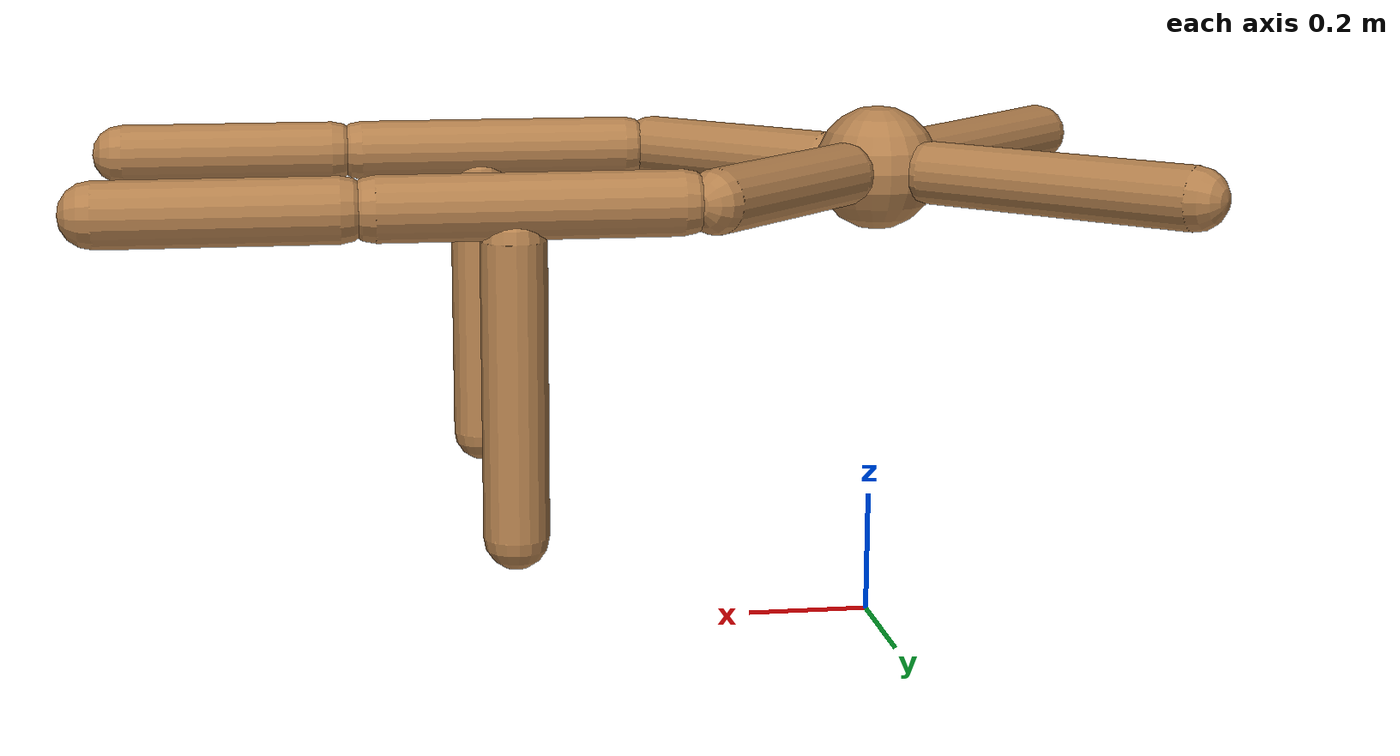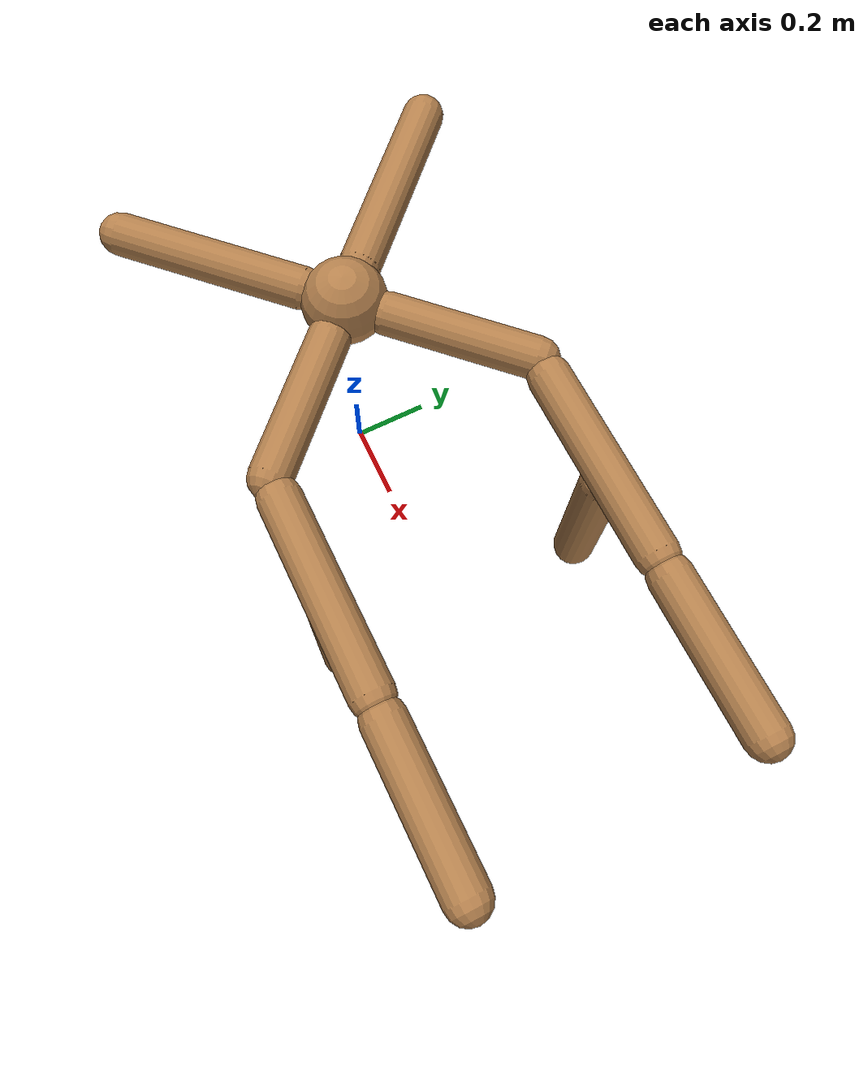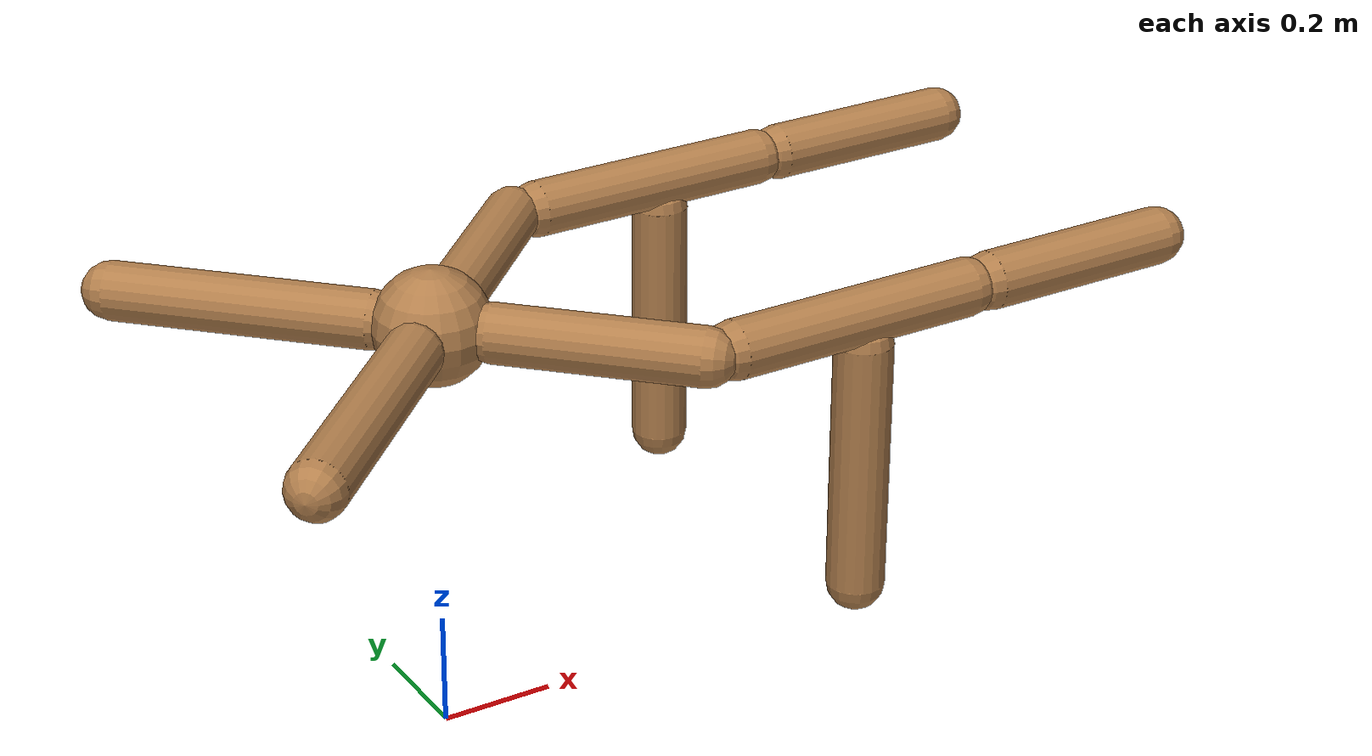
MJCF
<?xml version='1.0' encoding='UTF-8'?>
<!-- Universal Animal Template: unimal -->
<mujoco model="unimal">
  <compiler angle="degree"/>
  <size njmax="2000" nconmax="500"/>
  <option timestep=".005">
    <flag filterparent="disable"/>
  </option>
  <!-- Common defaults to make search space tractable -->
  <default>
    <!-- Define motor defaults -->
    <motor ctrlrange="-1 1" ctrllimited="true"/>
    <!-- Define joint defaults -->
    <default class="normal_joint">
      <joint type="hinge" damping="1" stiffness="1" armature="1" limited="true" range="-120 120" solimplimit="0 0.99 0.01"/>
    </default>
    <default class="walker_joint">
      <joint type="hinge" damping="0.2" stiffness="1" armature=".01" limited="true" range="-120 120" solimplimit="0 0.99 0.01"/>
    </default>
    <default class="stiff_joint">
      <joint type="hinge" damping="5" stiffness="10" armature=".01" limited="true" solimplimit="0 0.99 0.01"/>
    </default>
    <default class="free">
      <joint limited="false" damping="0" armature="0" stiffness="0"/>
    </default>
    <default class="growth_site">
      <site size="1e-6 1e-6 1e-6"/>
    </default>
    <default class="torso_growth_site">
      <site size="1e-6 1e-6 1e-6"/>
    </default>
    <default class="mirror_growth_site">
      <site size="1e-6 1e-6 1e-6"/>
    </default>
    <default class="btm_pos_site">
      <site size="1e-6 1e-6 1e-6"/>
    </default>
    <default class="box_face_site">
      <site size="1e-6 1e-6 1e-6"/>
    </default>
    <default class="imu_vel">
      <site type="box" size="0.05" rgba="1 0 0 1"/>
    </default>
    <default class="touch_site">
      <site group="3" rgba="0 0 1 .3"/>
    </default>
    <default class="food_site">
      <site material="food" size="0.15"/>
    </default>
    <!-- Define geom defaults -->
    <geom type="capsule" condim="3" friction="0.7 0.1 0.1" material="self"/>
  </default>
  <worldbody>
    <light diffuse="1 1 1" directional="true" exponent="1" pos="0 0 1" specular=".1 .1 .1"/>
    <!-- Programatically generated xml goes here -->
    <body name="torso/0" pos="0 0 0.75">
      <joint name="root" type="free" class="free"/>
      <site name="root" class="imu_vel"/>
      <geom name="torso/0" type="sphere" size="0.1" condim="3" density="800"/>
      <camera name="side" pos="0 -7 2" xyaxes="1 0 0 0 1 2" mode="trackcom"/>
      <site name="torso/0" class="growth_site" pos="0 0 0"/>
      <site name="torso/btm_pos/0" class="btm_pos_site" pos="0 0 -0.1"/>
      <site name="torso/touch/0" class="touch_site" size="0.11"/>
      <site name="torso/vertical/0" class="torso_growth_site" pos="0 0 -0.1"/>
      <body name="limb/0" pos="-0.07 0.07 0.0">
        <joint name="limbx/0" type="hinge" class="normal_joint" range="0 30" pos="0.04 -0.04 0.0" axis="0.5 0.5 -0.7071"/>
        <joint name="limby/0" type="hinge" class="normal_joint" range="0 60" pos="0.04 -0.04 0.0" axis="0.5 0.5 0.7071"/>
        <geom name="limb/0" type="capsule" fromto="0.0 0.0 0.0 -0.32 0.32 0.0" size="0.05" density="1000"/>
        <site name="limb/mid/0" class="mirror_growth_site" pos="-0.18 0.18 0.0"/>
        <site name="limb/btm/0" class="mirror_growth_site" pos="-0.32 0.32 0.0"/>
        <site name="limb/btm_pos/0" class="btm_pos_site" pos="-0.32 0.32 0.0"/>
        <site name="limb/touch/0" class="touch_site" size="0.060000000000000005" fromto="0.0 0.0 0.0 -0.32 0.32 0.0" type="capsule"/>
      </body>
      <body name="limb/1" pos="-0.07 -0.07 0.0">
        <joint name="limbx/1" type="hinge" class="normal_joint" range="0 30" pos="0.04 0.04 0.0" axis="0.5 -0.5 -0.7071"/>
        <joint name="limby/1" type="hinge" class="normal_joint" range="0 60" pos="0.04 0.04 0.0" axis="-0.5 0.5 -0.7071"/>
        <geom name="limb/1" type="capsule" fromto="0.0 0.0 0.0 -0.32 -0.32 0.0" size="0.05" density="1000"/>
        <site name="limb/mid/1" class="mirror_growth_site" pos="-0.18 -0.18 0.0"/>
        <site name="limb/btm/1" class="mirror_growth_site" pos="-0.32 -0.32 0.0"/>
        <site name="limb/btm_pos/1" class="btm_pos_site" pos="-0.32 -0.32 0.0"/>
        <site name="limb/touch/1" class="touch_site" size="0.060000000000000005" fromto="0.0 0.0 0.0 -0.32 -0.32 0.0" type="capsule"/>
      </body>
      <body name="limb/2" pos="0.07 0.07 0.0">
        <joint name="limby/2" type="hinge" class="normal_joint" range="0 45" pos="-0.04 -0.04 0.0" axis="-0.5 0.5 0.7071"/>
        <geom name="limb/2" type="capsule" fromto="0.0 0.0 0.0 0.25 0.25 0.0" size="0.05" density="1000"/>
        <site name="limb/mid/2" class="mirror_growth_site" pos="0.14 0.14 0.0"/>
        <site name="limb/btm/2" class="mirror_growth_site" pos="0.25 0.25 0.0"/>
        <site name="limb/btm_pos/2" class="btm_pos_site" pos="0.28 0.28 0.0"/>
        <site name="limb/touch/2" class="touch_site" size="0.060000000000000005" fromto="0.0 0.0 0.0 0.25 0.25 0.0" type="capsule"/>
        <body name="limb/4" pos="0.3 0.25 0.0">
          <joint name="limby/4" type="hinge" class="normal_joint" range="-45 0" pos="-0.05 0.0 0.0" axis="-0.0 1.0 0.0"/>
          <geom name="limb/4" type="capsule" fromto="0.0 0.0 0.0 0.45 0.0 0.0" size="0.05" density="1000"/>
          <site name="limb/mid/4" class="mirror_growth_site" pos="0.25 0.0 0.0"/>
          <site name="limb/btm/4" class="mirror_growth_site" pos="0.45 0.0 0.0"/>
          <site name="limb/btm_pos/4" class="btm_pos_site" pos="0.45 0.0 0.0"/>
          <site name="limb/touch/4" class="touch_site" size="0.060000000000000005" fromto="0.0 0.0 0.0 0.45 0.0 0.0" type="capsule"/>
          <body name="limb/10" pos="0.5 0.0 0.0">
            <joint name="limbx/10" type="hinge" class="normal_joint" range="-60 0" pos="-0.05 0.0 0.0" axis="0.0 0.0 1.0"/>
            <joint name="limby/10" type="hinge" class="normal_joint" range="-30 60" pos="-0.05 0.0 0.0" axis="-0.0 1.0 0.0"/>
            <geom name="limb/10" type="capsule" fromto="0.0 0.0 0.0 0.35 0.0 0.0" size="0.05" density="1000"/>
            <site name="limb/mid/10" class="mirror_growth_site" pos="0.2 0.0 0.0"/>
            <site name="limb/btm/10" class="mirror_growth_site" pos="0.35 0.0 0.0"/>
            <site name="limb/btm_pos/10" class="btm_pos_site" pos="0.4 0.0 0.0"/>
            <site name="limb/touch/10" class="touch_site" size="0.060000000000000005" fromto="0.0 0.0 0.0 0.35 0.0 0.0" type="capsule"/>
          </body>
          <body name="limb/12" pos="0.25 0.0 -0.05">
            <joint name="limbx/12" type="hinge" class="normal_joint" range="-45 0" pos="0.0 0.0 0.05" axis="1.0 0.0 0.0"/>
            <geom name="limb/12" type="capsule" fromto="0.0 0.0 0.0 0.0 0.0 -0.45" size="0.05" density="1000.0"/>
            <site name="limb/mid/12" class="mirror_growth_site" pos="0.0 0.0 -0.25"/>
            <site name="limb/btm/12" class="mirror_growth_site" pos="0.0 0.0 -0.45"/>
            <site name="limb/btm_pos/12" class="btm_pos_site" pos="0.0 0.0 -0.5"/>
            <site name="limb/touch/12" class="touch_site" size="0.060000000000000005" fromto="0.0 0.0 0.0 0.0 0.0 -0.45" type="capsule"/>
          </body>
        </body>
      </body>
      <body name="limb/3" pos="0.07 -0.07 0.0">
        <joint name="limby/3" type="hinge" class="normal_joint" range="0 45" pos="-0.04 0.04 0.0" axis="0.5 0.5 -0.7071"/>
        <geom name="limb/3" type="capsule" fromto="0.0 0.0 0.0 0.25 -0.25 0.0" size="0.05" density="1000"/>
        <site name="limb/mid/3" class="mirror_growth_site" pos="0.14 -0.14 0.0"/>
        <site name="limb/btm/3" class="mirror_growth_site" pos="0.25 -0.25 0.0"/>
        <site name="limb/btm_pos/3" class="btm_pos_site" pos="0.28 -0.28 0.0"/>
        <site name="limb/touch/3" class="touch_site" size="0.060000000000000005" fromto="0.0 0.0 0.0 0.25 -0.25 0.0" type="capsule"/>
        <body name="limb/5" pos="0.3 -0.25 0.0">
          <joint name="limby/5" type="hinge" class="normal_joint" range="-45 0" pos="-0.05 0.0 0.0" axis="-0.0 1.0 0.0"/>
          <geom name="limb/5" type="capsule" fromto="0.0 0.0 0.0 0.45 0.0 0.0" size="0.05" density="1000"/>
          <site name="limb/mid/5" class="mirror_growth_site" pos="0.25 0.0 0.0"/>
          <site name="limb/btm/5" class="mirror_growth_site" pos="0.45 0.0 0.0"/>
          <site name="limb/btm_pos/5" class="btm_pos_site" pos="0.45 0.0 0.0"/>
          <site name="limb/touch/5" class="touch_site" size="0.060000000000000005" fromto="0.0 0.0 0.0 0.45 0.0 0.0" type="capsule"/>
          <body name="limb/11" pos="0.5 0.0 0.0">
            <joint name="limbx/11" type="hinge" class="normal_joint" range="-60 0" pos="-0.05 0.0 0.0" axis="0.0 0.0 1.0"/>
            <joint name="limby/11" type="hinge" class="normal_joint" range="-30 60" pos="-0.05 0.0 0.0" axis="-0.0 1.0 0.0"/>
            <geom name="limb/11" type="capsule" fromto="0.0 0.0 0.0 0.35 0.0 0.0" size="0.05" density="1000"/>
            <site name="limb/mid/11" class="mirror_growth_site" pos="0.2 0.0 0.0"/>
            <site name="limb/btm/11" class="mirror_growth_site" pos="0.35 0.0 0.0"/>
            <site name="limb/btm_pos/11" class="btm_pos_site" pos="0.4 0.0 0.0"/>
            <site name="limb/touch/11" class="touch_site" size="0.060000000000000005" fromto="0.0 0.0 0.0 0.35 0.0 0.0" type="capsule"/>
          </body>
          <body name="limb/13" pos="0.25 0.0 -0.05">
            <joint name="limbx/13" type="hinge" class="normal_joint" range="-45 0" pos="0.0 0.0 0.05" axis="1.0 0.0 0.0"/>
            <geom name="limb/13" type="capsule" fromto="0.0 0.0 0.0 0.0 0.0 -0.45" size="0.05" density="1000.0"/>
            <site name="limb/mid/13" class="mirror_growth_site" pos="0.0 0.0 -0.25"/>
            <site name="limb/btm/13" class="mirror_growth_site" pos="0.0 0.0 -0.45"/>
            <site name="limb/btm_pos/13" class="btm_pos_site" pos="0.0 0.0 -0.5"/>
            <site name="limb/touch/13" class="touch_site" size="0.060000000000000005" fromto="0.0 0.0 0.0 0.0 0.0 -0.45" type="capsule"/>
          </body>
        </body>
      </body>
    </body>
  </worldbody>
  <actuator>
    <motor joint="limbx/0" gear="150" name="limbx/0"/>
    <motor joint="limby/0" gear="200" name="limby/0"/>
    <motor joint="limbx/1" gear="150" name="limbx/1"/>
    <motor joint="limby/1" gear="200" name="limby/1"/>
    <motor joint="limby/2" gear="150" name="limby/2"/>
    <motor joint="limby/4" gear="150" name="limby/4"/>
    <motor joint="limbx/10" gear="150" name="limbx/10"/>
    <motor joint="limby/10" gear="250" name="limby/10"/>
    <motor joint="limbx/12" gear="150" name="limbx/12"/>
    <motor joint="limby/3" gear="150" name="limby/3"/>
    <motor joint="limby/5" gear="150" name="limby/5"/>
    <motor joint="limbx/11" gear="150" name="limbx/11"/>
    <motor joint="limby/11" gear="250" name="limby/11"/>
    <motor joint="limbx/13" gear="150" name="limbx/13"/>
  </actuator>
  <sensor>
    <accelerometer name="torso_accel" site="root"/>
    <gyro name="torso_gyro" site="root"/>
    <velocimeter name="torso_vel" site="root"/>
    <subtreeangmom name="unimal_am" body="torso/0"/>
    <touch name="torso/0" site="torso/touch/0"/>
    <touch name="limb/0" site="limb/touch/0"/>
    <touch name="limb/1" site="limb/touch/1"/>
    <touch name="limb/2" site="limb/touch/2"/>
    <touch name="limb/4" site="limb/touch/4"/>
    <touch name="limb/10" site="limb/touch/10"/>
    <touch name="limb/12" site="limb/touch/12"/>
    <touch name="limb/3" site="limb/touch/3"/>
    <touch name="limb/5" site="limb/touch/5"/>
    <touch name="limb/11" site="limb/touch/11"/>
    <touch name="limb/13" site="limb/touch/13"/>
  </sensor>
  <!-- Add hfield assets -->
  <asset/>
  <!-- List of contacts to exclude -->
  <contact/>
  <!-- Define material, texture etc -->
  <asset>
    <material name="grid" texture="grid" texrepeat="1 1" texuniform="true" reflectance="0"/>
    <material name="hfield" texture="hfield" texrepeat="1 1" texuniform="true" reflectance="0"/>
    <material name="wall" texture="wall" texrepeat="1 1" texuniform="true" reflectance=".5"/>
    <material name="platform" texture="platform" texrepeat="1 1" texuniform="true" reflectance=".5"/>
    <material name="boundary" texture="boundary" texrepeat="1 1" texuniform="true" reflectance=".5"/>
    <material name="jump" texture="jump" texrepeat="1 1" texuniform="true" reflectance=".5"/>
    <material name="goal" rgba="1 0 0 1"/>
    <material name="food" rgba="0 0 1 1" emission="1"/>
    <material name="self" rgba=".7 .5 .3 1"/>
    <material name="self_default" rgba=".7 .5 .3 1"/>
    <material name="self_highlight" rgba="0 .5 .3 1"/>
    <material name="effector" rgba=".7 .4 .2 1"/>
    <material name="effector_default" rgba=".7 .4 .2 1"/>
    <material name="effector_highlight" rgba="0 .5 .3 1"/>
    <material name="decoration" rgba=".3 .5 .7 1"/>
    <material name="eye" rgba="0 .2 1 1"/>
    <material name="target" rgba=".6 .3 .3 1"/>
    <material name="target_default" rgba=".6 .3 .3 1"/>
    <material name="target_highlight" rgba=".6 .3 .3 .4"/>
    <material name="site" rgba=".5 .5 .5 .3"/>
    <material name="ball" texture="ball"/>
  </asset>
  <asset>
    <texture name="grid" type="2d" builtin="checker" rgb1="0.1 0.1 0.1" rgb2="0.1 0.1 0.1" width="300" height="300" mark="edge" markrgb="0.2 0.2 0.2"/>
    <texture name="hfield" type="2d" builtin="checker" rgb1="0.1 0.1 0.1" rgb2="0.1 0.1 0.1" width="300" height="300"/>
    <texture name="wall" type="2d" builtin="flat" rgb1="0.9 0.7 0" rgb2="0.9 0.7 0" width="300" height="300"/>
    <texture name="platform" type="2d" builtin="flat" rgb1="0.3 0 0.8" rgb2="0.3 0 0.8" width="300" height="300"/>
    <texture name="boundary" type="2d" builtin="flat" rgb1="0.3 0.3 0.3" rgb2="0.3 0.3 0.3" width="300" height="300"/>
    <texture name="jump" type="2d" builtin="flat" rgb1="0.3 0.3 0.3" rgb2="0.3 0.3 0.3" width="300" height="300"/>
    <texture name="skybox" type="skybox" builtin="flat" rgb1="0.8 1 1" rgb2="0.8 1 1" width="800" height="800"/>
    <texture name="ball" builtin="checker" mark="cross" width="151" height="151" rgb1="0.1 0.1 0.1" rgb2="0.9 0.9 0.9" markrgb="1 1 1"/>
  </asset>
  <visual>
    <headlight ambient=".4 .4 .4" diffuse=".8 .8 .8" specular="0.1 0.1 0.1"/>
    <map znear=".01"/>
    <quality shadowsize="2048"/>
  </visual>
</mujoco>
